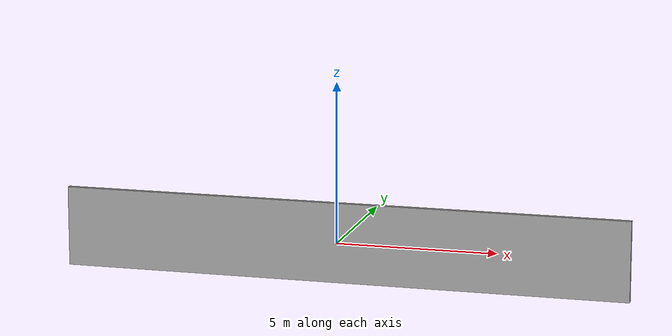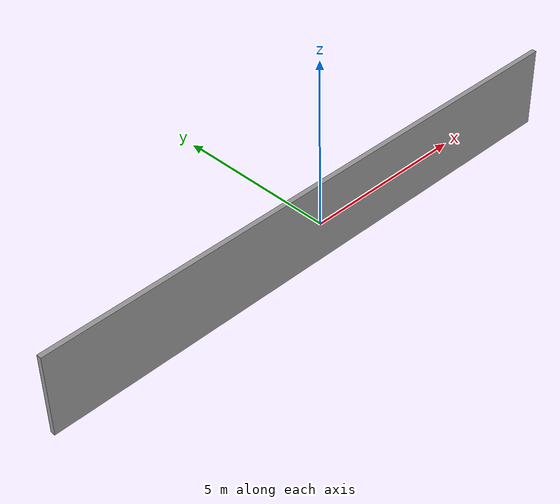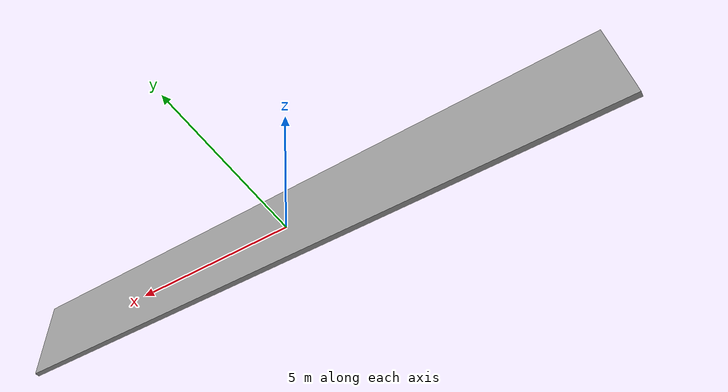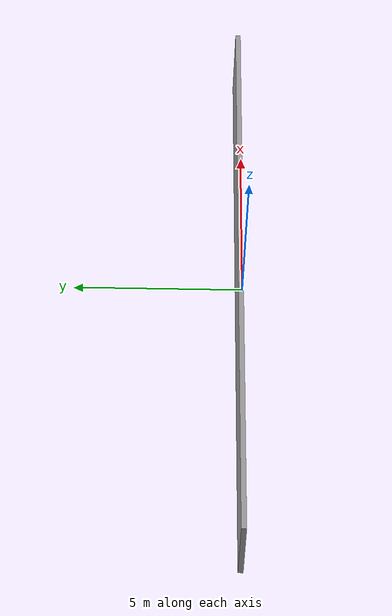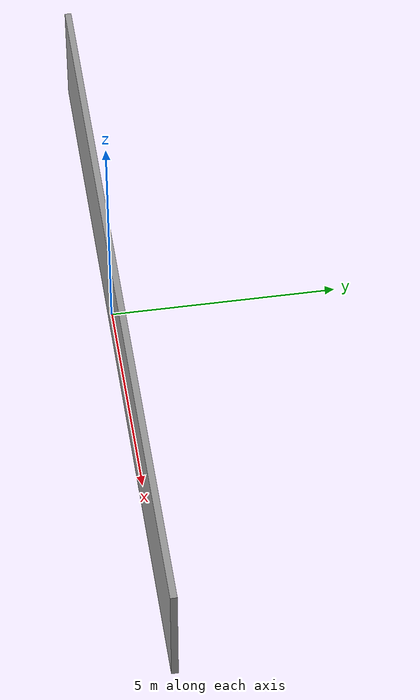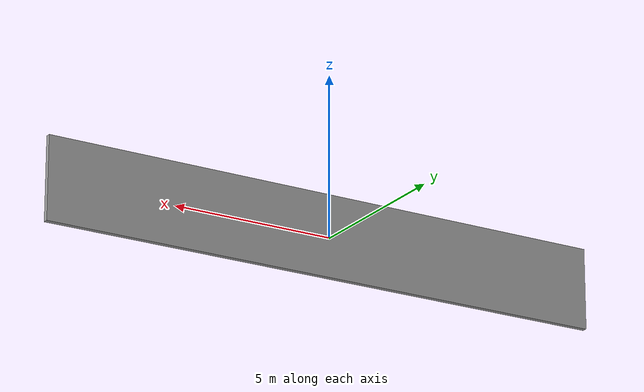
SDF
<?xml version='1.0'?>
<sdf version='1.7'>
  <model name='wall'>
    <pose>0.154754 0.099018 0 0 0 0</pose>
    <link name='Wall'>
      <collision name='Wall_Collision'>
        <geometry>
          <box>
            <size>17.75 0.15 2.5</size>
          </box>
        </geometry>
      </collision>
      <visual name='Wall_Visual'>
        <geometry>
          <box>
            <size>17.75 0.15 2.5</size>
          </box>
        </geometry>
        <material>
          <script>
            <uri>file://media/materials/scripts/gazebo.material</uri>
            <name>Gazebo/Grey</name>
          </script>
          <ambient>1 1 1 1</ambient>
        </material>
        <meta>
          <layer>0</layer>
        </meta>
      </visual>
    </link>
    <static>1</static>
  </model>
</sdf>
